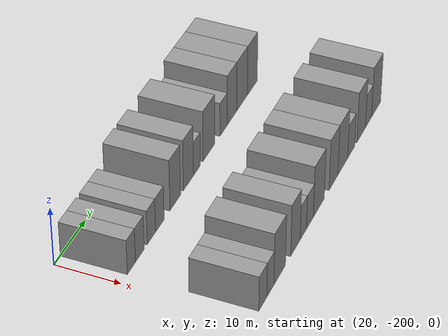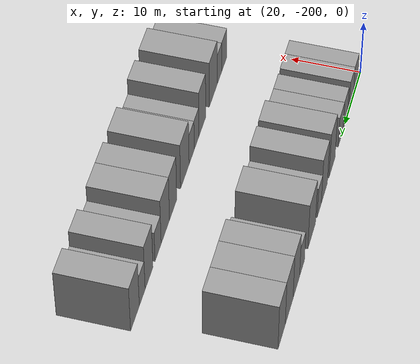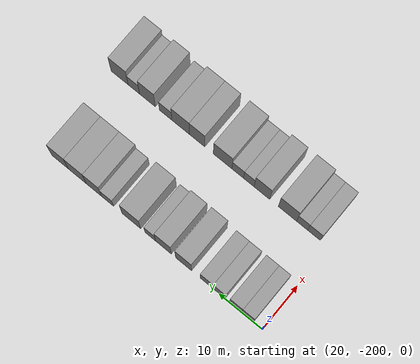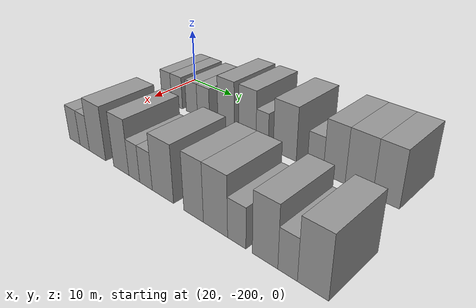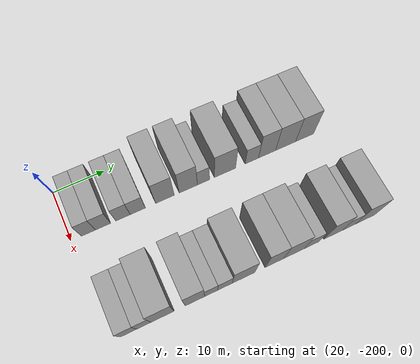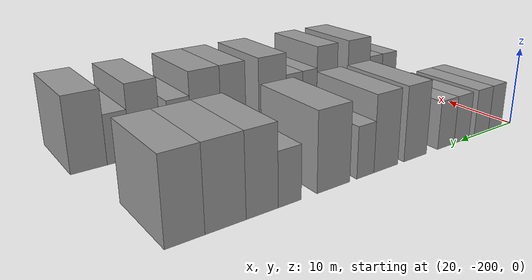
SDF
<sdf version="1.6">
 <world name="default">
  <model name="building_1">
   <static>1</static>
   <pose>25.0000 -196.6714 0 0.000000 0.000000 0.000000</pose>
   <link name="link">
    <pose>0 0 3.00 0 0 0</pose>
    <collision name="collision"><geometry><box><size>10.0000 2.6572 6.0000</size></box></geometry></collision>
    <visual name="visual">
     <cast_shadows>0</cast_shadows>
     <geometry><box><size>10.0000 2.6572 6.0000</size></box></geometry>
     <material>
      <script>
       <uri>model://grey_wall/materials/scripts</uri>
       <uri>model://grey_wall/materials/textures</uri>
       <name>vrc/grey_wall</name>
      </script>
     </material>
    </visual>
   </link>
  </model>
  <model name="building_2">
   <static>1</static>
   <pose>25.0000 -193.8930 0 0.000000 0.000000 0.000000</pose>
   <link name="link">
    <pose>0 0 3.00 0 0 0</pose>
    <collision name="collision"><geometry><box><size>10.0000 2.8997 6.0000</size></box></geometry></collision>
    <visual name="visual">
     <cast_shadows>0</cast_shadows>
     <geometry><box><size>10.0000 2.8997 6.0000</size></box></geometry>
     <material>
      <script>
       <uri>model://grey_wall/materials/scripts</uri>
       <uri>model://grey_wall/materials/textures</uri>
       <name>vrc/grey_wall</name>
      </script>
     </material>
    </visual>
   </link>
  </model>
  <model name="building_3">
   <static>1</static>
   <pose>25.0000 -190.0357 0 0.000000 0.000000 0.000000</pose>
   <link name="link">
    <pose>0 0 3.00 0 0 0</pose>
    <collision name="collision"><geometry><box><size>10.0000 2.8149 6.0000</size></box></geometry></collision>
    <visual name="visual">
     <cast_shadows>0</cast_shadows>
     <geometry><box><size>10.0000 2.8149 6.0000</size></box></geometry>
     <material>
      <script>
       <uri>model://grey_wall/materials/scripts</uri>
       <uri>model://grey_wall/materials/textures</uri>
       <name>vrc/grey_wall</name>
      </script>
     </material>
    </visual>
   </link>
  </model>
  <model name="building_4">
   <static>1</static>
   <pose>25.0000 -187.1431 0 0.000000 0.000000 0.000000</pose>
   <link name="link">
    <pose>0 0 3.00 0 0 0</pose>
    <collision name="collision"><geometry><box><size>10.0000 2.9703 6.0000</size></box></geometry></collision>
    <visual name="visual">
     <cast_shadows>0</cast_shadows>
     <geometry><box><size>10.0000 2.9703 6.0000</size></box></geometry>
     <material>
      <script>
       <uri>model://grey_wall/materials/scripts</uri>
       <uri>model://grey_wall/materials/textures</uri>
       <name>vrc/grey_wall</name>
      </script>
     </material>
    </visual>
   </link>
  </model>
  <model name="building_5">
   <static>1</static>
   <pose>25.0000 -181.7959 0 0.000000 0.000000 0.000000</pose>
   <link name="link">
    <pose>0 0 4.50 0 0 0</pose>
    <collision name="collision"><geometry><box><size>10.0000 3.7241 9.0000</size></box></geometry></collision>
    <visual name="visual">
     <cast_shadows>0</cast_shadows>
     <geometry><box><size>10.0000 3.7241 9.0000</size></box></geometry>
     <material>
      <script>
       <uri>model://grey_wall/materials/scripts</uri>
       <uri>model://grey_wall/materials/textures</uri>
       <name>vrc/grey_wall</name>
      </script>
     </material>
    </visual>
   </link>
  </model>
  <model name="building_6">
   <static>1</static>
   <pose>25.0000 -177.0930 0 0.000000 0.000000 0.000000</pose>
   <link name="link">
    <pose>0 0 4.50 0 0 0</pose>
    <collision name="collision"><geometry><box><size>10.0000 3.6816 9.0000</size></box></geometry></collision>
    <visual name="visual">
     <cast_shadows>0</cast_shadows>
     <geometry><box><size>10.0000 3.6816 9.0000</size></box></geometry>
     <material>
      <script>
       <uri>model://grey_wall/materials/scripts</uri>
       <uri>model://grey_wall/materials/textures</uri>
       <name>vrc/grey_wall</name>
      </script>
     </material>
    </visual>
   </link>
  </model>
  <model name="building_7">
   <static>1</static>
   <pose>25.0000 -174.0085 0 0.000000 0.000000 0.000000</pose>
   <link name="link">
    <pose>0 0 3.00 0 0 0</pose>
    <collision name="collision"><geometry><box><size>10.0000 2.4874 6.0000</size></box></geometry></collision>
    <visual name="visual">
     <cast_shadows>0</cast_shadows>
     <geometry><box><size>10.0000 2.4874 6.0000</size></box></geometry>
     <material>
      <script>
       <uri>model://grey_wall/materials/scripts</uri>
       <uri>model://grey_wall/materials/textures</uri>
       <name>vrc/grey_wall</name>
      </script>
     </material>
    </visual>
   </link>
  </model>
  <model name="building_8">
   <static>1</static>
   <pose>25.0000 -169.5566 0 0.000000 0.000000 0.000000</pose>
   <link name="link">
    <pose>0 0 4.50 0 0 0</pose>
    <collision name="collision"><geometry><box><size>10.0000 4.4163 9.0000</size></box></geometry></collision>
    <visual name="visual">
     <cast_shadows>0</cast_shadows>
     <geometry><box><size>10.0000 4.4163 9.0000</size></box></geometry>
     <material>
      <script>
       <uri>model://grey_wall/materials/scripts</uri>
       <uri>model://grey_wall/materials/textures</uri>
       <name>vrc/grey_wall</name>
      </script>
     </material>
    </visual>
   </link>
  </model>
  <model name="building_9">
   <static>1</static>
   <pose>25.0000 -163.9405 0 0.000000 0.000000 0.000000</pose>
   <link name="link">
    <pose>0 0 3.00 0 0 0</pose>
    <collision name="collision"><geometry><box><size>10.0000 2.8160 6.0000</size></box></geometry></collision>
    <visual name="visual">
     <cast_shadows>0</cast_shadows>
     <geometry><box><size>10.0000 2.8160 6.0000</size></box></geometry>
     <material>
      <script>
       <uri>model://grey_wall/materials/scripts</uri>
       <uri>model://grey_wall/materials/textures</uri>
       <name>vrc/grey_wall</name>
      </script>
     </material>
    </visual>
   </link>
  </model>
  <model name="building_10">
   <static>1</static>
   <pose>25.0000 -160.7035 0 0.000000 0.000000 0.000000</pose>
   <link name="link">
    <pose>0 0 4.50 0 0 0</pose>
    <collision name="collision"><geometry><box><size>10.0000 3.6581 9.0000</size></box></geometry></collision>
    <visual name="visual">
     <cast_shadows>0</cast_shadows>
     <geometry><box><size>10.0000 3.6581 9.0000</size></box></geometry>
     <material>
      <script>
       <uri>model://grey_wall/materials/scripts</uri>
       <uri>model://grey_wall/materials/textures</uri>
       <name>vrc/grey_wall</name>
      </script>
     </material>
    </visual>
   </link>
  </model>
  <model name="building_11">
   <static>1</static>
   <pose>25.0000 -156.7026 0 0.000000 0.000000 0.000000</pose>
   <link name="link">
    <pose>0 0 4.50 0 0 0</pose>
    <collision name="collision"><geometry><box><size>10.0000 4.3437 9.0000</size></box></geometry></collision>
    <visual name="visual">
     <cast_shadows>0</cast_shadows>
     <geometry><box><size>10.0000 4.3437 9.0000</size></box></geometry>
     <material>
      <script>
       <uri>model://grey_wall/materials/scripts</uri>
       <uri>model://grey_wall/materials/textures</uri>
       <name>vrc/grey_wall</name>
      </script>
     </material>
    </visual>
   </link>
  </model>
  <model name="building_12">
   <static>1</static>
   <pose>25.0000 -152.5547 0 0.000000 0.000000 0.000000</pose>
   <link name="link">
    <pose>0 0 4.50 0 0 0</pose>
    <collision name="collision"><geometry><box><size>10.0000 3.9522 9.0000</size></box></geometry></collision>
    <visual name="visual">
     <cast_shadows>0</cast_shadows>
     <geometry><box><size>10.0000 3.9522 9.0000</size></box></geometry>
     <material>
      <script>
       <uri>model://grey_wall/materials/scripts</uri>
       <uri>model://grey_wall/materials/textures</uri>
       <name>vrc/grey_wall</name>
      </script>
     </material>
    </visual>
   </link>
  </model>
  <model name="building_101">
   <static>1</static>
   <pose>44.0000 -196.5357 0 0.000000 0.000000 0.000000</pose>
   <link name="link">
    <pose>0 0 3.00 0 0 0</pose>
    <collision name="collision"><geometry><box><size>10.0000 2.9286 6.0000</size></box></geometry></collision>
    <visual name="visual">
     <cast_shadows>0</cast_shadows>
     <geometry><box><size>10.0000 2.9286 6.0000</size></box></geometry>
     <material>
      <script>
       <uri>model://grey_wall/materials/scripts</uri>
       <uri>model://grey_wall/materials/textures</uri>
       <name>vrc/grey_wall</name>
      </script>
     </material>
    </visual>
   </link>
  </model>
  <model name="building_102">
   <static>1</static>
   <pose>44.0000 -193.7895 0 0.000000 0.000000 0.000000</pose>
   <link name="link">
    <pose>0 0 3.00 0 0 0</pose>
    <collision name="collision"><geometry><box><size>10.0000 2.5638 6.0000</size></box></geometry></collision>
    <visual name="visual">
     <cast_shadows>0</cast_shadows>
     <geometry><box><size>10.0000 2.5638 6.0000</size></box></geometry>
     <material>
      <script>
       <uri>model://grey_wall/materials/scripts</uri>
       <uri>model://grey_wall/materials/textures</uri>
       <name>vrc/grey_wall</name>
      </script>
     </material>
    </visual>
   </link>
  </model>
  <model name="building_103">
   <static>1</static>
   <pose>44.0000 -190.3772 0 0.000000 0.000000 0.000000</pose>
   <link name="link">
    <pose>0 0 4.50 0 0 0</pose>
    <collision name="collision"><geometry><box><size>10.0000 4.2609 9.0000</size></box></geometry></collision>
    <visual name="visual">
     <cast_shadows>0</cast_shadows>
     <geometry><box><size>10.0000 4.2609 9.0000</size></box></geometry>
     <material>
      <script>
       <uri>model://grey_wall/materials/scripts</uri>
       <uri>model://grey_wall/materials/textures</uri>
       <name>vrc/grey_wall</name>
      </script>
     </material>
    </visual>
   </link>
  </model>
  <model name="building_104">
   <static>1</static>
   <pose>44.0000 -184.4240 0 0.000000 0.000000 0.000000</pose>
   <link name="link">
    <pose>0 0 4.50 0 0 0</pose>
    <collision name="collision"><geometry><box><size>10.0000 3.6456 9.0000</size></box></geometry></collision>
    <visual name="visual">
     <cast_shadows>0</cast_shadows>
     <geometry><box><size>10.0000 3.6456 9.0000</size></box></geometry>
     <material>
      <script>
       <uri>model://grey_wall/materials/scripts</uri>
       <uri>model://grey_wall/materials/textures</uri>
       <name>vrc/grey_wall</name>
      </script>
     </material>
    </visual>
   </link>
  </model>
  <model name="building_105">
   <static>1</static>
   <pose>44.0000 -181.3672 0 0.000000 0.000000 0.000000</pose>
   <link name="link">
    <pose>0 0 3.00 0 0 0</pose>
    <collision name="collision"><geometry><box><size>10.0000 2.4681 6.0000</size></box></geometry></collision>
    <visual name="visual">
     <cast_shadows>0</cast_shadows>
     <geometry><box><size>10.0000 2.4681 6.0000</size></box></geometry>
     <material>
      <script>
       <uri>model://grey_wall/materials/scripts</uri>
       <uri>model://grey_wall/materials/textures</uri>
       <name>vrc/grey_wall</name>
      </script>
     </material>
    </visual>
   </link>
  </model>
  <model name="building_106">
   <static>1</static>
   <pose>44.0000 -178.7613 0 0.000000 0.000000 0.000000</pose>
   <link name="link">
    <pose>0 0 3.00 0 0 0</pose>
    <collision name="collision"><geometry><box><size>10.0000 2.7437 6.0000</size></box></geometry></collision>
    <visual name="visual">
     <cast_shadows>0</cast_shadows>
     <geometry><box><size>10.0000 2.7437 6.0000</size></box></geometry>
     <material>
      <script>
       <uri>model://grey_wall/materials/scripts</uri>
       <uri>model://grey_wall/materials/textures</uri>
       <name>vrc/grey_wall</name>
      </script>
     </material>
    </visual>
   </link>
  </model>
  <model name="building_107">
   <static>1</static>
   <pose>44.0000 -175.1966 0 0.000000 0.000000 0.000000</pose>
   <link name="link">
    <pose>0 0 4.50 0 0 0</pose>
    <collision name="collision"><geometry><box><size>10.0000 4.3857 9.0000</size></box></geometry></collision>
    <visual name="visual">
     <cast_shadows>0</cast_shadows>
     <geometry><box><size>10.0000 4.3857 9.0000</size></box></geometry>
     <material>
      <script>
       <uri>model://grey_wall/materials/scripts</uri>
       <uri>model://grey_wall/materials/textures</uri>
       <name>vrc/grey_wall</name>
      </script>
     </material>
    </visual>
   </link>
  </model>
  <model name="building_108">
   <static>1</static>
   <pose>44.0000 -169.1781 0 0.000000 0.000000 0.000000</pose>
   <link name="link">
    <pose>0 0 4.50 0 0 0</pose>
    <collision name="collision"><geometry><box><size>10.0000 3.6512 9.0000</size></box></geometry></collision>
    <visual name="visual">
     <cast_shadows>0</cast_shadows>
     <geometry><box><size>10.0000 3.6512 9.0000</size></box></geometry>
     <material>
      <script>
       <uri>model://grey_wall/materials/scripts</uri>
       <uri>model://grey_wall/materials/textures</uri>
       <name>vrc/grey_wall</name>
      </script>
     </material>
    </visual>
   </link>
  </model>
  <model name="building_109">
   <static>1</static>
   <pose>44.0000 -165.2620 0 0.000000 0.000000 0.000000</pose>
   <link name="link">
    <pose>0 0 4.50 0 0 0</pose>
    <collision name="collision"><geometry><box><size>10.0000 4.1810 9.0000</size></box></geometry></collision>
    <visual name="visual">
     <cast_shadows>0</cast_shadows>
     <geometry><box><size>10.0000 4.1810 9.0000</size></box></geometry>
     <material>
      <script>
       <uri>model://grey_wall/materials/scripts</uri>
       <uri>model://grey_wall/materials/textures</uri>
       <name>vrc/grey_wall</name>
      </script>
     </material>
    </visual>
   </link>
  </model>
  <model name="building_110">
   <static>1</static>
   <pose>44.0000 -161.6835 0 0.000000 0.000000 0.000000</pose>
   <link name="link">
    <pose>0 0 3.00 0 0 0</pose>
    <collision name="collision"><geometry><box><size>10.0000 2.9760 6.0000</size></box></geometry></collision>
    <visual name="visual">
     <cast_shadows>0</cast_shadows>
     <geometry><box><size>10.0000 2.9760 6.0000</size></box></geometry>
     <material>
      <script>
       <uri>model://grey_wall/materials/scripts</uri>
       <uri>model://grey_wall/materials/textures</uri>
       <name>vrc/grey_wall</name>
      </script>
     </material>
    </visual>
   </link>
  </model>
  <model name="building_111">
   <static>1</static>
   <pose>44.0000 -157.2957 0 0.000000 0.000000 0.000000</pose>
   <link name="link">
    <pose>0 0 4.50 0 0 0</pose>
    <collision name="collision"><geometry><box><size>10.0000 3.7996 9.0000</size></box></geometry></collision>
    <visual name="visual">
     <cast_shadows>0</cast_shadows>
     <geometry><box><size>10.0000 3.7996 9.0000</size></box></geometry>
     <material>
      <script>
       <uri>model://grey_wall/materials/scripts</uri>
       <uri>model://grey_wall/materials/textures</uri>
       <name>vrc/grey_wall</name>
      </script>
     </material>
    </visual>
   </link>
  </model>
  <model name="building_112">
   <static>1</static>
   <pose>44.0000 -154.0280 0 0.000000 0.000000 0.000000</pose>
   <link name="link">
    <pose>0 0 3.00 0 0 0</pose>
    <collision name="collision"><geometry><box><size>10.0000 2.7358 6.0000</size></box></geometry></collision>
    <visual name="visual">
     <cast_shadows>0</cast_shadows>
     <geometry><box><size>10.0000 2.7358 6.0000</size></box></geometry>
     <material>
      <script>
       <uri>model://grey_wall/materials/scripts</uri>
       <uri>model://grey_wall/materials/textures</uri>
       <name>vrc/grey_wall</name>
      </script>
     </material>
    </visual>
   </link>
  </model>
  <model name="building_113">
   <static>1</static>
   <pose>44.0000 -150.6118 0 0.000000 0.000000 0.000000</pose>
   <link name="link">
    <pose>0 0 4.50 0 0 0</pose>
    <collision name="collision"><geometry><box><size>10.0000 4.0966 9.0000</size></box></geometry></collision>
    <visual name="visual">
     <cast_shadows>0</cast_shadows>
     <geometry><box><size>10.0000 4.0966 9.0000</size></box></geometry>
     <material>
      <script>
       <uri>model://grey_wall/materials/scripts</uri>
       <uri>model://grey_wall/materials/textures</uri>
       <name>vrc/grey_wall</name>
      </script>
     </material>
    </visual>
   </link>
  </model>
 </world>
</sdf>
